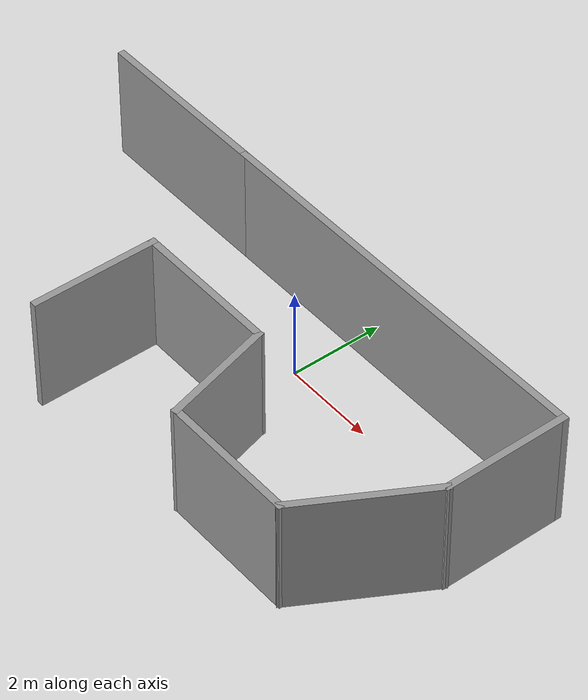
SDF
<?xml version='1.0'?>
<sdf version='1.6'>
  <model name='test3.worlds'>
    <pose frame=''>-0.653049 -1.35088 0 0 -0 0</pose>
    <link name='Wall_0'>
      <collision name='Wall_0_Collision'>
        <geometry>
          <box>
            <size>2.75 0.15 2.5</size>
          </box>
        </geometry>
        <pose frame=''>0 0 1.25 0 -0 0</pose>
      </collision>
      <visual name='Wall_0_Visual'>
        <pose frame=''>0 0 1.25 0 -0 0</pose>
        <geometry>
          <box>
            <size>2.75 0.15 2.5</size>
          </box>
        </geometry>
        <material>
          <script>
            <uri>file://media/materials/scripts/gazebo.material</uri>
            <name>Gazebo/Grey</name>
          </script>
          <ambient>1 1 1 1</ambient>
        </material>
        <meta>
          <layer>0</layer>
        </meta>
      </visual>
      <pose frame=''>-1.64695 -1.39912 0 0 -0 1.5708</pose>
    </link>
    <link name='Wall_1'>
      <collision name='Wall_1_Collision'>
        <geometry>
          <box>
            <size>3.25 0.15 2.5</size>
          </box>
        </geometry>
        <pose frame=''>0 0 1.25 0 -0 0</pose>
      </collision>
      <visual name='Wall_1_Visual'>
        <pose frame=''>0 0 1.25 0 -0 0</pose>
        <geometry>
          <box>
            <size>3.25 0.15 2.5</size>
          </box>
        </geometry>
        <material>
          <script>
            <uri>file://media/materials/scripts/gazebo.material</uri>
            <name>Gazebo/Grey</name>
          </script>
          <ambient>1 1 1 1</ambient>
        </material>
        <meta>
          <layer>0</layer>
        </meta>
      </visual>
      <pose frame=''>-0.096951 -0.099123 0 0 -0 0</pose>
    </link>
    <link name='Wall_2'>
      <collision name='Wall_2_Collision'>
        <geometry>
          <box>
            <size>2.5 0.15 2.5</size>
          </box>
        </geometry>
        <pose frame=''>0 0 1.25 0 -0 0</pose>
      </collision>
      <visual name='Wall_2_Visual'>
        <pose frame=''>0 0 1.25 0 -0 0</pose>
        <geometry>
          <box>
            <size>2.5 0.15 2.5</size>
          </box>
        </geometry>
        <material>
          <script>
            <uri>file://media/materials/scripts/gazebo.material</uri>
            <name>Gazebo/Grey</name>
          </script>
          <ambient>1 1 1 1</ambient>
        </material>
        <meta>
          <layer>0</layer>
        </meta>
      </visual>
      <pose frame=''>1.75716 -1.23409 0 0 -0 -1.309</pose>
    </link>
    <link name='Wall_3'>
      <collision name='Wall_3_Collision'>
        <geometry>
          <box>
            <size>3 0.15 2.5</size>
          </box>
        </geometry>
        <pose frame=''>0 0 1.25 0 -0 0</pose>
      </collision>
      <visual name='Wall_3_Visual'>
        <pose frame=''>0 0 1.25 0 -0 0</pose>
        <geometry>
          <box>
            <size>3 0.15 2.5</size>
          </box>
        </geometry>
        <material>
          <script>
            <uri>file://media/materials/scripts/gazebo.material</uri>
            <name>Gazebo/Grey</name>
          </script>
          <ambient>1 1 1 1</ambient>
        </material>
        <meta>
          <layer>0</layer>
        </meta>
      </visual>
      <pose frame=''>3.48627 -2.36905 0 0 -0 0</pose>
    </link>
    <link name='Wall_4'>
      <collision name='Wall_4_Collision'>
        <geometry>
          <box>
            <size>3 0.15 2.5</size>
          </box>
        </geometry>
        <pose frame=''>0 0 1.25 0 -0 0</pose>
      </collision>
      <visual name='Wall_4_Visual'>
        <pose frame=''>0 0 1.25 0 -0 0</pose>
        <geometry>
          <box>
            <size>3 0.15 2.5</size>
          </box>
        </geometry>
        <material>
          <script>
            <uri>file://media/materials/scripts/gazebo.material</uri>
            <name>Gazebo/Grey</name>
          </script>
          <ambient>1 1 1 1</ambient>
        </material>
        <meta>
          <layer>0</layer>
        </meta>
      </visual>
      <pose frame=''>5.62377 -1.13496 0 0 -0 1.0472</pose>
    </link>
    <link name='Wall_5'>
      <collision name='Wall_5_Collision'>
        <geometry>
          <box>
            <size>2.75 0.15 2.5</size>
          </box>
        </geometry>
        <pose frame=''>0 0 1.25 0 -0 0</pose>
      </collision>
      <visual name='Wall_5_Visual'>
        <pose frame=''>0 0 1.25 0 -0 0</pose>
        <geometry>
          <box>
            <size>2.75 0.15 2.5</size>
          </box>
        </geometry>
        <material>
          <script>
            <uri>file://media/materials/scripts/gazebo.material</uri>
            <name>Gazebo/Grey</name>
          </script>
          <ambient>1 1 1 1</ambient>
        </material>
        <meta>
          <layer>0</layer>
        </meta>
      </visual>
      <pose frame=''>6.33627 1.39912 0 0 -0 1.5708</pose>
    </link>
    <link name='Wall_6'>
      <collision name='Wall_6_Collision'>
        <geometry>
          <box>
            <size>9 0.15 2.5</size>
          </box>
        </geometry>
        <pose frame=''>0 0 1.25 0 -0 0</pose>
      </collision>
      <visual name='Wall_6_Visual'>
        <pose frame=''>0 0 1.25 0 -0 0</pose>
        <geometry>
          <box>
            <size>9 0.15 2.5</size>
          </box>
        </geometry>
        <material>
          <script>
            <uri>file://media/materials/scripts/gazebo.material</uri>
            <name>Gazebo/Grey</name>
          </script>
          <ambient>1 1 1 1</ambient>
        </material>
        <meta>
          <layer>0</layer>
        </meta>
      </visual>
      <pose frame=''>1.91127 2.69912 0 0 -0 3.14159</pose>
    </link>
    <link name='Wall_7'>
      <collision name='Wall_7_Collision'>
        <geometry>
          <box>
            <size>4 0.15 2.5</size>
          </box>
        </geometry>
        <pose frame=''>0 0 1.25 0 -0 0</pose>
      </collision>
      <visual name='Wall_7_Visual'>
        <pose frame=''>0 0 1.25 0 -0 0</pose>
        <geometry>
          <box>
            <size>4 0.15 2.5</size>
          </box>
        </geometry>
        <material>
          <script>
            <uri>file://media/materials/scripts/gazebo.material</uri>
            <name>Gazebo/Grey</name>
          </script>
          <ambient>1 1 1 1</ambient>
        </material>
        <meta>
          <layer>0</layer>
        </meta>
      </visual>
      <pose frame=''>-4.43873 2.69912 0 0 -0 3.14159</pose>
    </link>
    <static>1</static>
  </model>
</sdf>
